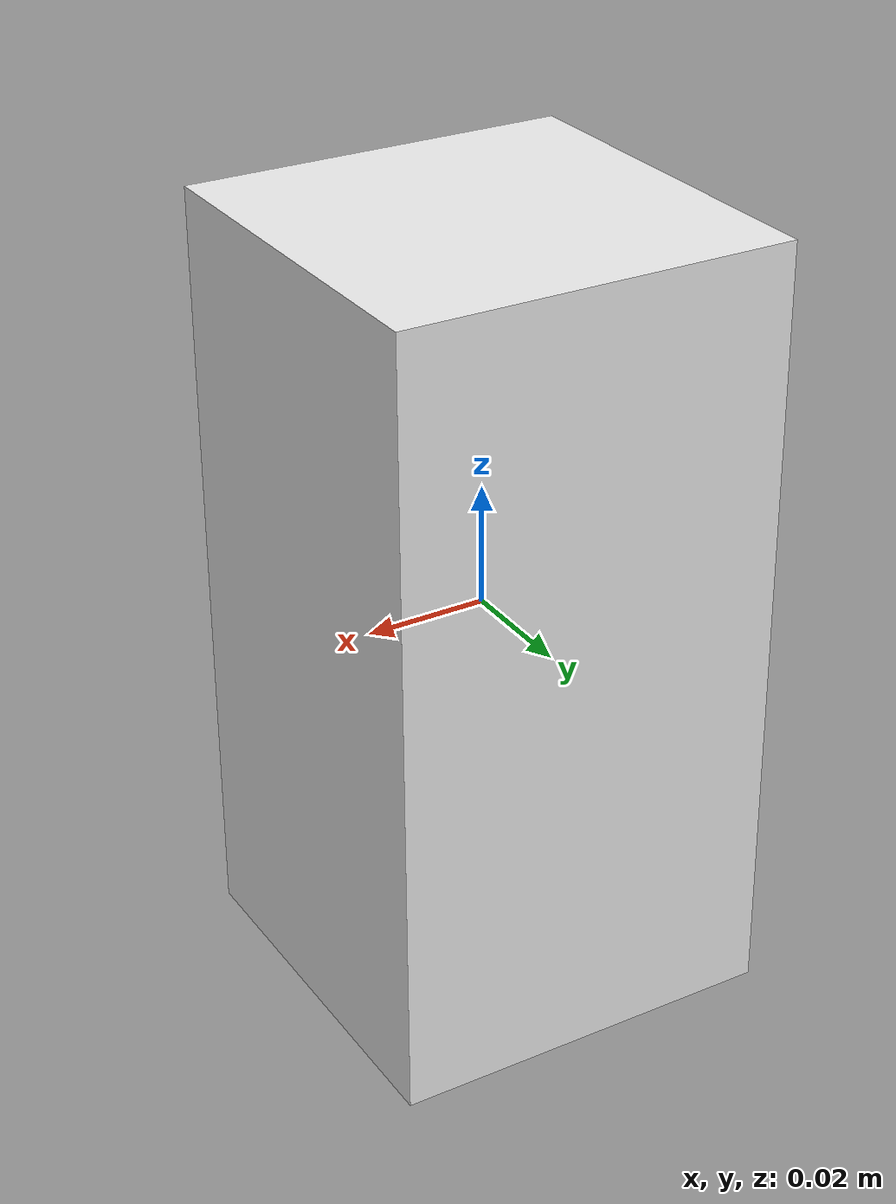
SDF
<?xml version="1.0" ?>
<sdf version='1.4'>
  <model name="White Box 1">
      <static>0</static>
      <link name='link'>
        <inertial>
          <mass>0.25</mass>
          <inertia>
            <ixx>0.001</ixx>
            <ixy>0.000000</ixy>
            <ixz>0.000000</ixz>
            <iyy>0.001</iyy>
            <iyz>0.000000</iyz>
            <izz>0.001</izz>
          </inertia>
        </inertial>
        <collision name='collision'>
          <geometry>
            <box>
              <size>0.064 0.064 0.128</size>
            </box>
          </geometry>
          <surface>
            <friction>
              <ode>
                <mu>30.0</mu>
                <mu2>30.0</mu2>
              </ode>
            </friction>
            <contact>
              <ode>
                <kp>1000000.0</kp>
                <kd>100.0</kd>
                <max_vel>1.0</max_vel>
                <min_depth>0.002</min_depth>
              </ode>
            </contact>
          </surface>
        </collision>
        <visual name='visual'>
          <geometry>
            <box>
              <size>0.064 0.064 0.128</size>
            </box>
          </geometry>
          <material>
            <script>
              <uri>file://media/materials/scripts/gazebo.material</uri>
              <name>Gazebo/White</name>
            </script>
          </material>
        </visual>
        <velocity_decay>
          <linear>0.000000</linear>
          <angular>0.000000</angular>
        </velocity_decay>
        <self_collide>0</self_collide>
        <kinematic>0</kinematic>
        <gravity>1</gravity>
      </link>
  </model>
</sdf>
